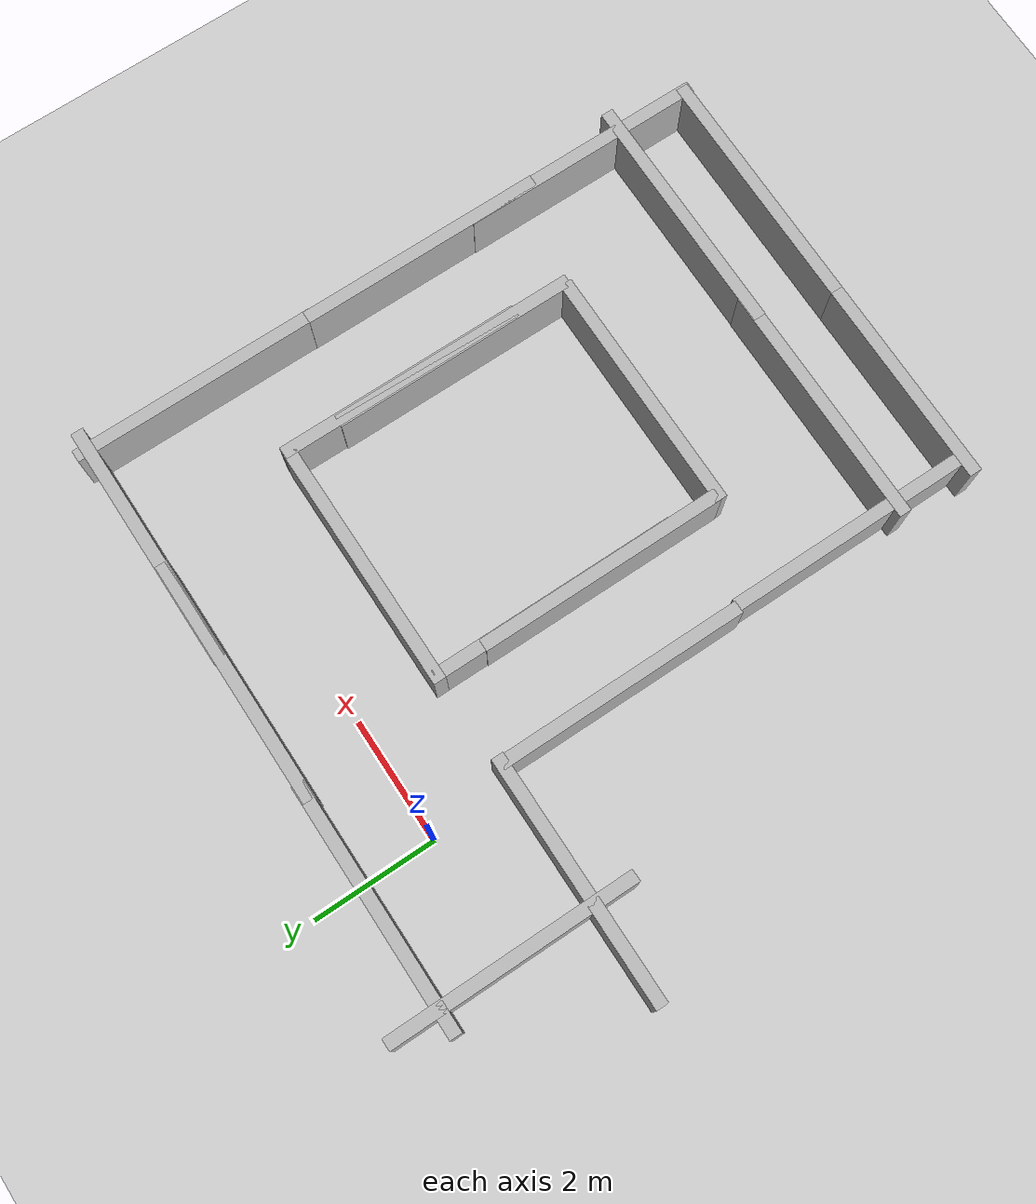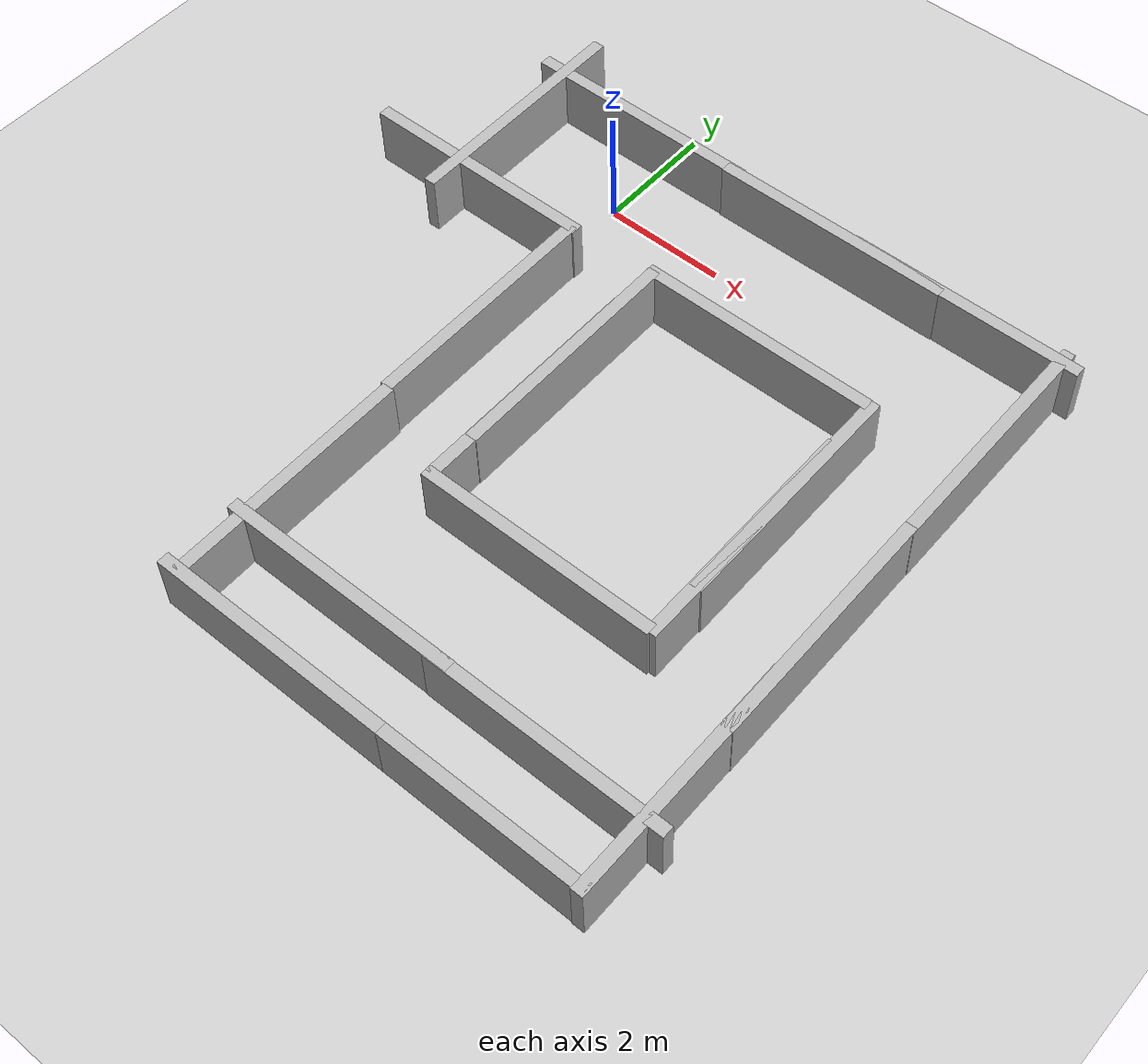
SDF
<sdf version="1.10">
 <world name="demo">
  <plugin name="gz::sim::systems::Physics" filename="gz-sim-physics-system"/>
  <plugin name="gz::sim::systems::Sensors" filename="gz-sim-sensors-system">
   <render_engine>ogre2</render_engine>
  </plugin>
  <plugin name="gz::sim::systems::SceneBroadcaster" filename="gz-sim-scene-broadcaster-system"/>
  <plugin name="gz::sim::systems::UserCommands" filename="gz-sim-user-commands-system"/>
  <gravity>0 0 -9.8000000000000007</gravity>
  <magnetic_field>5.5644999999999998e-06 2.2875799999999999e-05 -4.2388400000000002e-05</magnetic_field>
  <atmosphere type="adiabatic"/>
  <physics type="ode">
   <max_step_size>0.001</max_step_size>
   <real_time_factor>1</real_time_factor>
   <real_time_update_rate>1000</real_time_update_rate>
  </physics>
  <scene>
   <ambient>0.400000006 0.400000006 0.400000006 1</ambient>
   <background>0.699999988 0.699999988 0.699999988 1</background>
   <shadows>true</shadows>
  </scene>
  <model name="ground_plane">
   <static>true</static>
   <link name="link">
    <collision name="collision">
     <geometry><plane><normal>0 0 1</normal><size>100 100</size></plane></geometry>
    </collision>
    <visual name="visual">
     <geometry><plane><normal>0 0 1</normal><size>100 100</size></plane></geometry>
     <material>
      <ambient>0.800000012 0.800000012 0.800000012 1</ambient>
      <diffuse>0.800000012 0.800000012 0.800000012 1</diffuse>
      <specular>0.800000012 0.800000012 0.800000012 1</specular>
     </material>
    </visual>
    <inertial>
     <mass>1</mass>
     <inertia><ixx>1</ixx><ixy>0</ixy><ixz>0</ixz><iyy>1</iyy><iyz>0</iyz><izz>1</izz></inertia>
    </inertial>
   </link>
  </model>
  <model name="wall2">
   <pose>-2 0 0.5 0 0 0</pose>
   <static>true</static>
   <link name="link">
    <visual name="visual"><geometry><box><size>0.20000000000000001 4 1</size></box></geometry></visual>
    <inertial>
     <mass>1</mass>
     <inertia><ixx>1</ixx><ixy>0</ixy><ixz>0</ixz><iyy>1</iyy><iyz>0</iyz><izz>1</izz></inertia>
    </inertial>
   </link>
  </model>
  <model name="wall2_1">
   <pose>5.7029804680582314 -4.063950813810516 0.5 0 0 0</pose>
   <static>true</static>
   <link name="link">
    <visual name="visual"><geometry><box><size>0.20000000000000001 4 1</size></box></geometry></visual>
    <inertial>
     <mass>1</mass>
     <inertia><ixx>1</ixx><ixy>0</ixy><ixz>0</ixz><iyy>1</iyy><iyz>0</iyz><izz>1</izz></inertia>
    </inertial>
   </link>
  </model>
  <model name="wall2_1_3">
   <pose>5.7274021988212063 -3.1471428291191934 0.5 0 0 0</pose>
   <static>true</static>
   <link name="link">
    <visual name="visual"><geometry><box><size>0.20000000000000001 4 1</size></box></geometry></visual>
    <inertial>
     <mass>1</mass>
     <inertia><ixx>1</ixx><ixy>0</ixy><ixz>0</ixz><iyy>1</iyy><iyz>0</iyz><izz>1</izz></inertia>
    </inertial>
   </link>
  </model>
  <model name="wall4_2_1_2">
   <pose>3.6925893299725834 -1.2362583154717814 0.5 0 0 1.5700000841906609</pose>
   <static>true</static>
   <link name="link">
    <visual name="visual"><geometry><box><size>0.20000000000000001 4 1</size></box></geometry></visual>
    <inertial>
     <mass>1</mass>
     <inertia><ixx>1</ixx><ixy>0</ixy><ixz>0</ixz><iyy>1</iyy><iyz>0</iyz><izz>1</izz></inertia>
    </inertial>
   </link>
  </model>
  <model name="wall2_1_2_1_1_1">
   <pose>1.7944655533479268 -3.2076375586492221 0.5 0 0 0</pose>
   <static>true</static>
   <link name="link">
    <visual name="visual"><geometry><box><size>0.20000000000000001 4 1</size></box></geometry></visual>
    <inertial>
     <mass>1</mass>
     <inertia><ixx>1</ixx><ixy>0</ixy><ixz>0</ixz><iyy>1</iyy><iyz>0</iyz><izz>1</izz></inertia>
    </inertial>
   </link>
  </model>
  <model name="wall3_1">
   <pose>-0.42545012439432517 1.1665967479141159 0.5 0 0 1.5700000841906609</pose>
   <static>true</static>
   <link name="link">
    <visual name="visual"><geometry><box><size>0.20000000000000001 4 1</size></box></geometry></visual>
    <inertial>
     <mass>1</mass>
     <inertia><ixx>1</ixx><ixy>0</ixy><ixz>0</ixz><iyy>1</iyy><iyz>0</iyz><izz>1</izz></inertia>
    </inertial>
   </link>
  </model>
  <model name="wall3_2">
   <pose>3.2806114973699954 1.1477639948831218 0.5 0 0 1.5700000841906609</pose>
   <static>true</static>
   <link name="link">
    <visual name="visual"><geometry><box><size>0.20000000000000001 4 1</size></box></geometry></visual>
    <inertial>
     <mass>1</mass>
     <inertia><ixx>1</ixx><ixy>0</ixy><ixz>0</ixz><iyy>1</iyy><iyz>0</iyz><izz>1</izz></inertia>
    </inertial>
   </link>
  </model>
  <model name="wall3_3">
   <pose>5.6550496737669205 1.1586302299196041 0.5 0 0 1.5700000841906609</pose>
   <static>true</static>
   <link name="link">
    <visual name="visual"><geometry><box><size>0.20000000000000001 4 1</size></box></geometry></visual>
    <inertial>
     <mass>1</mass>
     <inertia><ixx>1</ixx><ixy>0</ixy><ixz>0</ixz><iyy>1</iyy><iyz>0</iyz><izz>1</izz></inertia>
    </inertial>
   </link>
  </model>
  <model name="wall2_1_2_1">
   <pose>7.3320484439815594 -0.63444346838170418 0.5 0 0 0</pose>
   <static>true</static>
   <link name="link">
    <visual name="visual"><geometry><box><size>0.20000000000000001 4 1</size></box></geometry></visual>
    <inertial>
     <mass>1</mass>
     <inertia><ixx>1</ixx><ixy>0</ixy><ixz>0</ixz><iyy>1</iyy><iyz>0</iyz><izz>1</izz></inertia>
    </inertial>
   </link>
  </model>
  <model name="wall2_1_2_2">
   <pose>7.3248804254498374 -4.5268296967271571 0.5 0 0 0</pose>
   <static>true</static>
   <link name="link">
    <visual name="visual"><geometry><box><size>0.20000000000000001 4 1</size></box></geometry></visual>
    <inertial>
     <mass>1</mass>
     <inertia><ixx>1</ixx><ixy>0</ixy><ixz>0</ixz><iyy>1</iyy><iyz>0</iyz><izz>1</izz></inertia>
    </inertial>
   </link>
  </model>
  <model name="wall4_1_1_1">
   <pose>-1.613133775636058 -1.3171476712557433 0.5 0 0 1.5700000841906609</pose>
   <static>true</static>
   <link name="link">
    <visual name="visual"><geometry><box><size>0.20000000000000001 4 1</size></box></geometry></visual>
    <inertial>
     <mass>1</mass>
     <inertia><ixx>1</ixx><ixy>0</ixy><ixz>0</ixz><iyy>1</iyy><iyz>0</iyz><izz>1</izz></inertia>
    </inertial>
   </link>
  </model>
  <model name="wall2_1_2_1_1_2_1">
   <pose>0.26501695054489938 -3.30225637468551 0.5 0 0 0</pose>
   <static>true</static>
   <link name="link">
    <visual name="visual"><geometry><box><size>0.20000000000000001 4 1</size></box></geometry></visual>
    <inertial>
     <mass>1</mass>
     <inertia><ixx>1</ixx><ixy>0</ixy><ixz>0</ixz><iyy>1</iyy><iyz>0</iyz><izz>1</izz></inertia>
    </inertial>
   </link>
  </model>
  <model name="wall4_2_1_2_1">
   <pose>1.9990465998022788 -9.2713271790167386 0.5 0 0 1.5700000841906609</pose>
   <static>true</static>
   <link name="link">
    <visual name="visual"><geometry><box><size>0.20000000000000001 4 1</size></box></geometry></visual>
    <inertial>
     <mass>1</mass>
     <inertia><ixx>1</ixx><ixy>0</ixy><ixz>0</ixz><iyy>1</iyy><iyz>0</iyz><izz>1</izz></inertia>
    </inertial>
   </link>
  </model>
  <model name="wall4_2_1_2_2">
   <pose>5.3832489675414568 -9.2737887892385409 0.5 0 0 1.5700000841906609</pose>
   <static>true</static>
   <link name="link">
    <visual name="visual"><geometry><box><size>0.20000000000000001 4 1</size></box></geometry></visual>
    <inertial>
     <mass>1</mass>
     <inertia><ixx>1</ixx><ixy>0</ixy><ixz>0</ixz><iyy>1</iyy><iyz>0</iyz><izz>1</izz></inertia>
    </inertial>
   </link>
  </model>
  <model name="wall2_1_2_1_1_2_1_1">
   <pose>0.30091394462440446 -7.2839260813555757 0.5 0 0 0</pose>
   <static>true</static>
   <link name="link">
    <visual name="visual"><geometry><box><size>0.20000000000000001 4 1</size></box></geometry></visual>
    <inertial>
     <mass>1</mass>
     <inertia><ixx>1</ixx><ixy>0</ixy><ixz>0</ixz><iyy>1</iyy><iyz>0</iyz><izz>1</izz></inertia>
    </inertial>
   </link>
  </model>
  <model name="wall2_1_2_1_1_2_1_2">
   <pose>1.7840903756270032 -3.9998076913292389 0.5 0 0 0</pose>
   <static>true</static>
   <link name="link">
    <visual name="visual"><geometry><box><size>0.20000000000000001 4 1</size></box></geometry></visual>
    <inertial>
     <mass>1</mass>
     <inertia><ixx>1</ixx><ixy>0</ixy><ixz>0</ixz><iyy>1</iyy><iyz>0</iyz><izz>1</izz></inertia>
    </inertial>
   </link>
  </model>
  <model name="wall4_2_1_2_3">
   <pose>3.6902910943708749 -6.0042531828920964 0.5 0 0 1.5700000841906609</pose>
   <static>true</static>
   <link name="link">
    <visual name="visual"><geometry><box><size>0.20000000000000001 4 1</size></box></geometry></visual>
    <inertial>
     <mass>1</mass>
     <inertia><ixx>1</ixx><ixy>0</ixy><ixz>0</ixz><iyy>1</iyy><iyz>0</iyz><izz>1</izz></inertia>
    </inertial>
   </link>
  </model>
  <model name="wall2_1_2_2_1">
   <pose>7.3151125848067187 -7.3890435662662775 0.5 0 0 0</pose>
   <static>true</static>
   <link name="link">
    <visual name="visual"><geometry><box><size>0.20000000000000001 4 1</size></box></geometry></visual>
    <inertial>
     <mass>1</mass>
     <inertia><ixx>1</ixx><ixy>0</ixy><ixz>0</ixz><iyy>1</iyy><iyz>0</iyz><izz>1</izz></inertia>
    </inertial>
   </link>
  </model>
  <model name="wall4_2_1_2_1_1">
   <pose>2.0673519551529487 -8.0711909154159933 0.5 0 0 1.5700000841906603</pose>
   <static>true</static>
   <link name="link">
    <visual name="visual"><geometry><box><size>0.20000000000000001 4 1</size></box></geometry></visual>
    <inertial>
     <mass>1</mass>
     <inertia><ixx>1</ixx><ixy>0</ixy><ixz>0</ixz><iyy>1</iyy><iyz>0</iyz><izz>1</izz></inertia>
    </inertial>
   </link>
  </model>
  <model name="wall4_2_1_2_1_2">
   <pose>5.6592467021909298 -8.0828758685774069 0.5 0 0 1.5700000841906603</pose>
   <static>true</static>
   <link name="link">
    <visual name="visual"><geometry><box><size>0.20000000000000001 4 1</size></box></geometry></visual>
    <inertial>
     <mass>1</mass>
     <inertia><ixx>1</ixx><ixy>0</ixy><ixz>0</ixz><iyy>1</iyy><iyz>0</iyz><izz>1</izz></inertia>
    </inertial>
   </link>
  </model>
  <light name="sun" type="directional">
   <pose>0 0 10 0 0 0</pose>
   <intensity>1</intensity>
   <direction>-0.5 0.10000000000000001 -0.90000000000000002</direction>
   <diffuse>0.800000012 0.800000012 0.800000012 1</diffuse>
   <specular>0.200000003 0.200000003 0.200000003 1</specular>
   <attenuation>
    <range>1000</range>
    <linear>0.01</linear>
    <constant>0.90000000000000002</constant>
    <quadratic>0.001</quadratic>
   </attenuation>
   <spot><inner_angle>0</inner_angle><outer_angle>0</outer_angle><falloff>0</falloff></spot>
  </light>
 </world>
</sdf>
